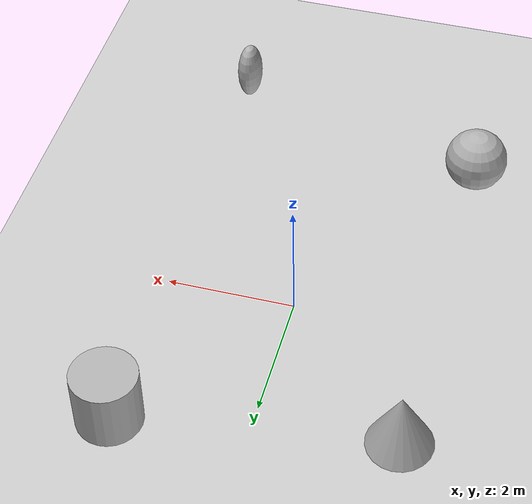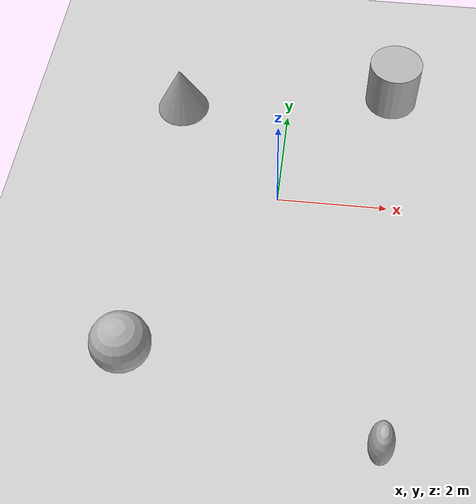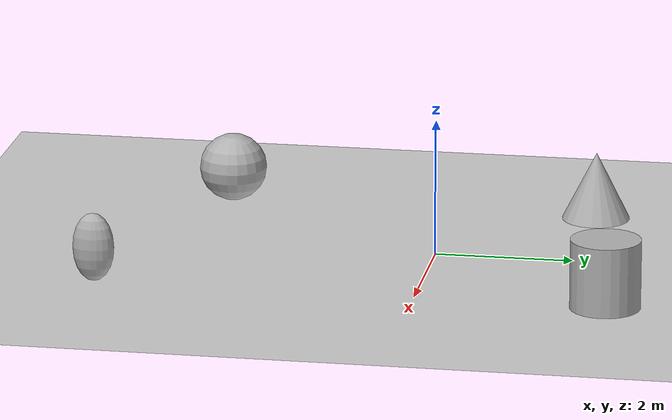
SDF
<sdf version='1.10'>
  <world name='empty'>
    <physics name='1ms' type='ignored'>
      <max_step_size>0.001</max_step_size>
      <real_time_factor>1</real_time_factor>
      <real_time_update_rate>1000</real_time_update_rate>
    </physics>
    <plugin name='gz::sim::systems::Physics' filename='gz-sim-physics-system'/>
    <plugin name='gz::sim::systems::UserCommands' filename='gz-sim-user-commands-system'/>
    <plugin name='gz::sim::systems::SceneBroadcaster' filename='gz-sim-scene-broadcaster-system'/>
    <plugin name='gz::sim::systems::Contact' filename='gz-sim-contact-system'/>
        <plugin name='gz::sim::systems::Sensors' filename='gz-sim-sensors-system'>
      <render_engine>ogre2</render_engine>
    </plugin>
    <gravity>0 0 -9.8000000000000007</gravity>
    <magnetic_field>5.5644999999999998e-06 2.2875799999999999e-05 -4.2388400000000002e-05</magnetic_field>
    <atmosphere type='adiabatic'/>
    <scene>
      <ambient>0.400000006 0.400000006 0.400000006 1</ambient>
      <background>0.699999988 0.699999988 0.699999988 1</background>
      <shadows>true</shadows>
    </scene>
    <model name='ground_plane'>
      <static>true</static>
      <link name='link'>
        <collision name='collision'>
          <geometry>
            <plane>
              <normal>0 0 1</normal>
              <size>100 100</size>
            </plane>
          </geometry>
          <surface>
            <friction>
              <ode/>
            </friction>
            <bounce/>
            <contact/>
          </surface>
        </collision>
        <visual name='visual'>
          <geometry>
            <plane>
              <normal>0 0 1</normal>
              <size>100 100</size>
            </plane>
          </geometry>
          <material>
            <ambient>0.800000012 0.800000012 0.800000012 1</ambient>
            <diffuse>0.800000012 0.800000012 0.800000012 1</diffuse>
            <specular>0.800000012 0.800000012 0.800000012 1</specular>
          </material>
        </visual>
        <pose>0 0 0 0 0 0</pose>
        <inertial>
          <pose>0 0 0 0 0 0</pose>
          <mass>1</mass>
          <inertia>
            <ixx>1</ixx>
            <ixy>0</ixy>
            <ixz>0</ixz>
            <iyy>1</iyy>
            <iyz>0</iyz>
            <izz>1</izz>
          </inertia>
        </inertial>
        <enable_wind>false</enable_wind>
      </link>
      <pose>0 0 0 0 0 0</pose>
      <self_collide>false</self_collide>
    </model>
    <model name='cylinder'>
      <pose>2.0048775363604054 2.6980760983918466 0.5 0 0 0</pose>
      <link name='cylinder_link'>
        <inertial>
          <inertia>
            <ixx>0.14580000000000001</ixx>
            <ixy>0</ixy>
            <ixz>0</ixz>
            <iyy>0.14580000000000001</iyy>
            <iyz>0</iyz>
            <izz>0.125</izz>
          </inertia>
          <mass>1</mass>
          <pose>0 0 0 0 0 0</pose>
        </inertial>
        <collision name='cylinder_collision'>
          <geometry>
            <cylinder>
              <radius>0.5</radius>
              <length>1</length>
            </cylinder>
          </geometry>
          <surface>
            <friction>
              <ode/>
            </friction>
            <bounce/>
            <contact/>
          </surface>
        </collision>
        <visual name='cylinder_visual'>
          <geometry>
            <cylinder>
              <radius>0.5</radius>
              <length>1</length>
            </cylinder>
          </geometry>
          <material>
            <ambient>0.300000012 0.300000012 0.300000012 1</ambient>
            <diffuse>0.699999988 0.699999988 0.699999988 1</diffuse>
            <specular>1 1 1 1</specular>
          </material>
        </visual>
        <pose>0 0 0 0 0 0</pose>
        <enable_wind>false</enable_wind>
      </link>
      <static>false</static>
      <self_collide>false</self_collide>
    </model>
    <model name='cone'>
      <pose>-2.0971600717788696 2.077154587956815 0.5 0 0 0</pose>
      <link name='cone_link'>
        <inertial>
          <inertia>
            <ixx>0.074999999999999997</ixx>
            <ixy>0</ixy>
            <ixz>0</ixz>
            <iyy>0.074999999999999997</iyy>
            <iyz>0</iyz>
            <izz>0.074999999999999997</izz>
          </inertia>
          <mass>1</mass>
          <pose>0 0 0 0 0 0</pose>
        </inertial>
        <collision name='cone_collision'>
          <geometry>
            <cone>
              <radius>0.5</radius>
              <length>1</length>
            </cone>
          </geometry>
          <surface>
            <friction>
              <ode/>
            </friction>
            <bounce/>
            <contact/>
          </surface>
        </collision>
        <visual name='cone_visual'>
          <geometry>
            <cone>
              <radius>0.5</radius>
              <length>1</length>
            </cone>
          </geometry>
          <material>
            <ambient>0.300000012 0.300000012 0.300000012 1</ambient>
            <diffuse>0.699999988 0.699999988 0.699999988 1</diffuse>
            <specular>1 1 1 1</specular>
          </material>
        </visual>
        <pose>0 0 0 0 0 0</pose>
        <enable_wind>false</enable_wind>
      </link>
      <static>false</static>
      <self_collide>false</self_collide>
    </model>
    <model name='ellipsoid'>
      <pose>2.0048775752207959 -4.6025982994918282 0.5 0 0 0</pose>
      <link name='ellipsoid_link'>
        <inertial>
          <inertia>
            <ixx>0.068000000000000005</ixx>
            <ixy>0</ixy>
            <ixz>0</ixz>
            <iyy>0.058000000000000003</iyy>
            <iyz>0</iyz>
            <izz>0.025999999999999999</izz>
          </inertia>
          <mass>1</mass>
          <pose>0 0 0 0 0 0</pose>
        </inertial>
        <collision name='ellipsoid_collision'>
          <geometry>
            <ellipsoid>
              <radii>0.20000000000000001 0.29999999999999999 0.5</radii>
            </ellipsoid>
          </geometry>
          <surface>
            <friction>
              <ode/>
            </friction>
            <bounce/>
            <contact/>
          </surface>
        </collision>
        <visual name='ellipsoid_visual'>
          <geometry>
            <ellipsoid>
              <radii>0.20000000000000001 0.29999999999999999 0.5</radii>
            </ellipsoid>
          </geometry>
          <material>
            <ambient>0.300000012 0.300000012 0.300000012 1</ambient>
            <diffuse>0.699999988 0.699999988 0.699999988 1</diffuse>
            <specular>1 1 1 1</specular>
          </material>
        </visual>
        <pose>0 0 0 0 0 0</pose>
        <enable_wind>false</enable_wind>
      </link>
      <static>false</static>
      <self_collide>false</self_collide>
    </model>
    <model name='sphere'>
      <pose>-2.1706234205213697 -3.3860029582662703 0.5 0 0 0</pose>
      <link name='sphere_link'>
        <inertial>
          <inertia>
            <ixx>0.10000000000000001</ixx>
            <ixy>0</ixy>
            <ixz>0</ixz>
            <iyy>0.10000000000000001</iyy>
            <iyz>0</iyz>
            <izz>0.10000000000000001</izz>
          </inertia>
          <mass>1</mass>
          <pose>0 0 0 0 0 0</pose>
        </inertial>
        <collision name='sphere_collision'>
          <geometry>
            <sphere>
              <radius>0.5</radius>
            </sphere>
          </geometry>
          <surface>
            <friction>
              <ode/>
            </friction>
            <bounce/>
            <contact/>
          </surface>
        </collision>
        <visual name='sphere_visual'>
          <geometry>
            <sphere>
              <radius>0.5</radius>
            </sphere>
          </geometry>
          <material>
            <ambient>0.300000012 0.300000012 0.300000012 1</ambient>
            <diffuse>0.699999988 0.699999988 0.699999988 1</diffuse>
            <specular>1 1 1 1</specular>
          </material>
        </visual>
        <pose>0 0 0 0 0 0</pose>
        <enable_wind>false</enable_wind>
      </link>
      <static>false</static>
      <self_collide>false</self_collide>
    </model>
    <light name='sun' type='directional'>
      <pose>0 0 10 0 0 0</pose>
      <cast_shadows>true</cast_shadows>
      <intensity>1</intensity>
      <direction>-0.5 0.10000000000000001 -0.90000000000000002</direction>
      <diffuse>0.800000012 0.800000012 0.800000012 1</diffuse>
      <specular>0.200000003 0.200000003 0.200000003 1</specular>
      <attenuation>
        <range>1000</range>
        <linear>0.01</linear>
        <constant>0.90000000000000002</constant>
        <quadratic>0.001</quadratic>
      </attenuation>
      <spot>
        <inner_angle>0</inner_angle>
        <outer_angle>0</outer_angle>
        <falloff>0</falloff>
      </spot>
    </light>
  </world>
</sdf>
